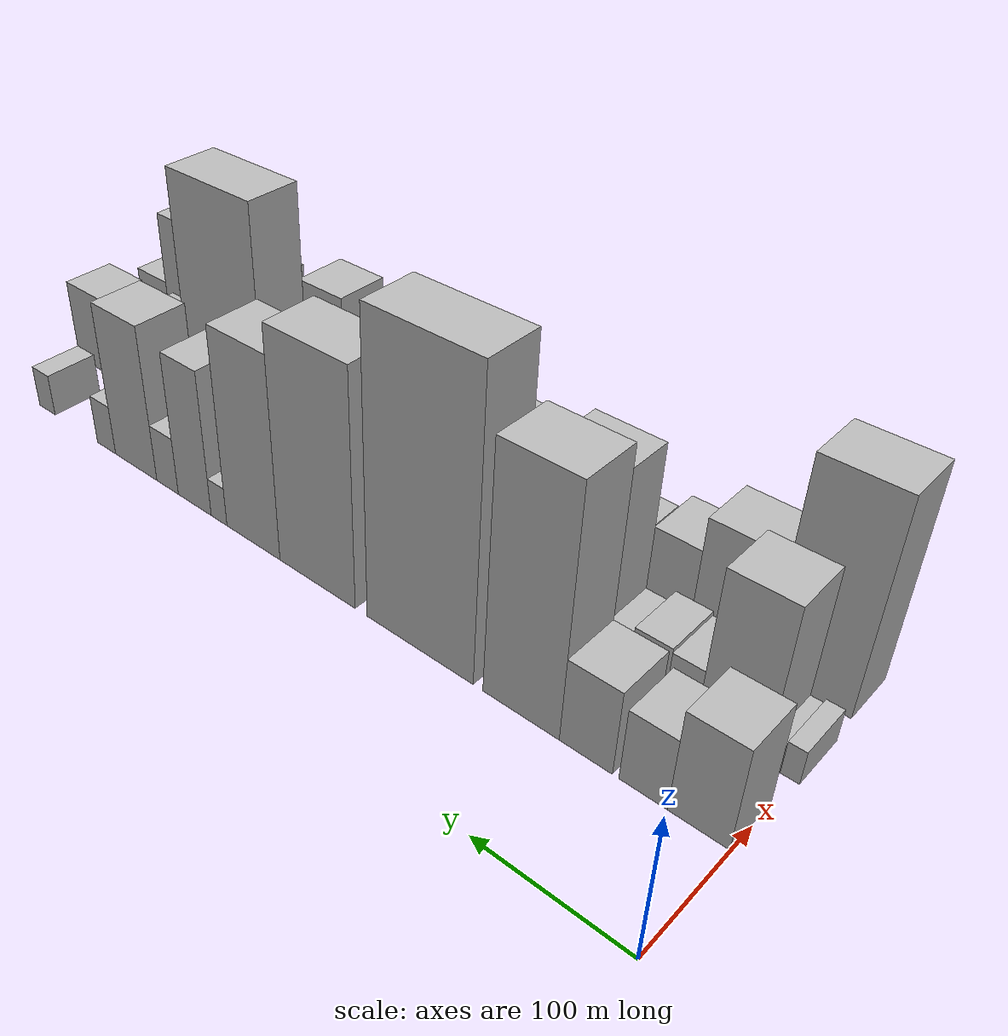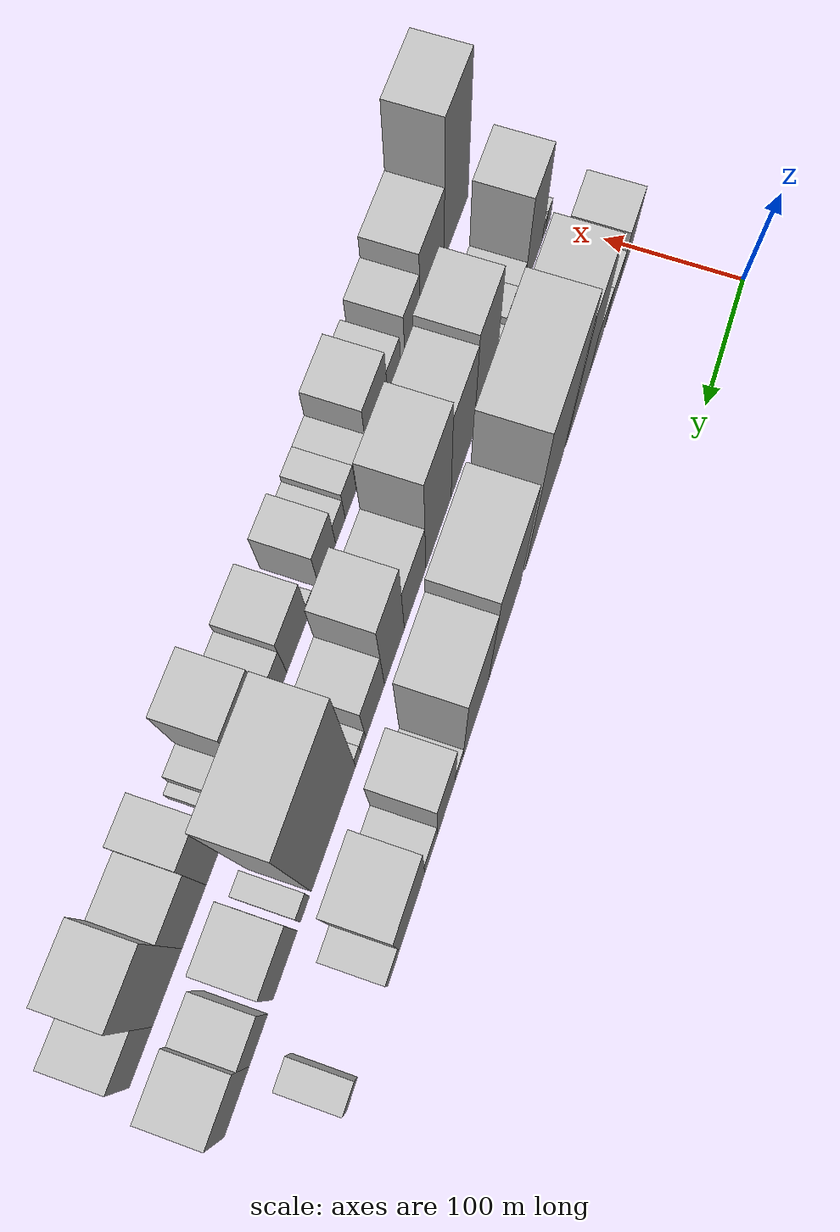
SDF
<sdf version="1.6">
 <world name="default">
  <model name="building_17">
   <static>1</static>
   <pose>100.0000 18.7852 0 0.000000 0.000000 0.000000</pose>
   <link name="link">
    <pose>0 0 36.00 0 0 0</pose>
    <collision name="collision"><geometry><box><size>40.0000 36.2534 72.0000</size></box></geometry></collision>
    <visual name="visual">
     <cast_shadows>0</cast_shadows>
     <geometry><box><size>40.0000 36.2534 72.0000</size></box></geometry>
     <material>
      <script>
       <uri>model://HANNAS_wall/materials/scripts</uri>
       <uri>model://HANNAS_wall/materials/textures</uri>
       <name>vrc/HANNAS_wall</name>
      </script>
     </material>
    </visual>
   </link>
  </model>
  <model name="building_18">
   <static>1</static>
   <pose>100.0000 51.7863 0 0.000000 0.000000 0.000000</pose>
   <link name="link">
    <pose>0 0 25.50 0 0 0</pose>
    <collision name="collision"><geometry><box><size>40.0000 29.7487 51.0000</size></box></geometry></collision>
    <visual name="visual">
     <cast_shadows>0</cast_shadows>
     <geometry><box><size>40.0000 29.7487 51.0000</size></box></geometry>
     <material>
      <script>
       <uri>model://HANNAS_wall/materials/scripts</uri>
       <uri>model://HANNAS_wall/materials/textures</uri>
       <name>vrc/HANNAS_wall</name>
      </script>
     </material>
    </visual>
   </link>
  </model>
  <model name="building_19">
   <static>1</static>
   <pose>100.0000 87.9456 0 0.000000 0.000000 0.000000</pose>
   <link name="link">
    <pose>0 0 30.00 0 0 0</pose>
    <collision name="collision"><geometry><box><size>40.0000 34.5700 60.0000</size></box></geometry></collision>
    <visual name="visual">
     <cast_shadows>0</cast_shadows>
     <geometry><box><size>40.0000 34.5700 60.0000</size></box></geometry>
     <material>
      <script>
       <uri>model://HANNAS_wall/materials/scripts</uri>
       <uri>model://HANNAS_wall/materials/textures</uri>
       <name>vrc/HANNAS_wall</name>
      </script>
     </material>
    </visual>
   </link>
  </model>
  <model name="building_20">
   <static>1</static>
   <pose>100.0000 131.8592 0 0.000000 0.000000 0.000000</pose>
   <link name="link">
    <pose>0 0 87.00 0 0 0</pose>
    <collision name="collision"><geometry><box><size>40.0000 53.2572 174.0000</size></box></geometry></collision>
    <visual name="visual">
     <cast_shadows>0</cast_shadows>
     <geometry><box><size>40.0000 53.2572 174.0000</size></box></geometry>
     <material>
      <script>
       <uri>model://HANNAS_wall/materials/scripts</uri>
       <uri>model://HANNAS_wall/materials/textures</uri>
       <name>vrc/HANNAS_wall</name>
      </script>
     </material>
    </visual>
   </link>
  </model>
  <model name="building_21">
   <static>1</static>
   <pose>100.0000 206.7829 0 0.000000 0.000000 0.000000</pose>
   <link name="link">
    <pose>0 0 106.50 0 0 0</pose>
    <collision name="collision"><geometry><box><size>40.0000 82.5902 213.0000</size></box></geometry></collision>
    <visual name="visual">
     <cast_shadows>0</cast_shadows>
     <geometry><box><size>40.0000 82.5902 213.0000</size></box></geometry>
     <material>
      <script>
       <uri>model://HANNAS_wall/materials/scripts</uri>
       <uri>model://HANNAS_wall/materials/textures</uri>
       <name>vrc/HANNAS_wall</name>
      </script>
     </material>
    </visual>
   </link>
  </model>
  <model name="building_22">
   <static>1</static>
   <pose>100.0000 291.1268 0 0.000000 0.000000 0.000000</pose>
   <link name="link">
    <pose>0 0 85.50 0 0 0</pose>
    <collision name="collision"><geometry><box><size>40.0000 66.0975 171.0000</size></box></geometry></collision>
    <visual name="visual">
     <cast_shadows>0</cast_shadows>
     <geometry><box><size>40.0000 66.0975 171.0000</size></box></geometry>
     <material>
      <script>
       <uri>model://HANNAS_wall/materials/scripts</uri>
       <uri>model://HANNAS_wall/materials/textures</uri>
       <name>vrc/HANNAS_wall</name>
      </script>
     </material>
    </visual>
   </link>
  </model>
  <model name="building_23">
   <static>1</static>
   <pose>100.0000 349.3756 0 0.000000 0.000000 0.000000</pose>
   <link name="link">
    <pose>0 0 75.00 0 0 0</pose>
    <collision name="collision"><geometry><box><size>40.0000 50.4002 150.0000</size></box></geometry></collision>
    <visual name="visual">
     <cast_shadows>0</cast_shadows>
     <geometry><box><size>40.0000 50.4002 150.0000</size></box></geometry>
     <material>
      <script>
       <uri>model://HANNAS_wall/materials/scripts</uri>
       <uri>model://HANNAS_wall/materials/textures</uri>
       <name>vrc/HANNAS_wall</name>
      </script>
     </material>
    </visual>
   </link>
  </model>
  <model name="building_24">
   <static>1</static>
   <pose>100.0000 382.4126 0 0.000000 0.000000 0.000000</pose>
   <link name="link">
    <pose>0 0 15.00 0 0 0</pose>
    <collision name="collision"><geometry><box><size>40.0000 15.6738 30.0000</size></box></geometry></collision>
    <visual name="visual">
     <cast_shadows>0</cast_shadows>
     <geometry><box><size>40.0000 15.6738 30.0000</size></box></geometry>
     <material>
      <script>
       <uri>model://HANNAS_wall/materials/scripts</uri>
       <uri>model://HANNAS_wall/materials/textures</uri>
       <name>vrc/HANNAS_wall</name>
      </script>
     </material>
    </visual>
   </link>
  </model>
  <model name="building_25">
   <static>1</static>
   <pose>100.0000 407.1039 0 0.000000 0.000000 0.000000</pose>
   <link name="link">
    <pose>0 0 55.50 0 0 0</pose>
    <collision name="collision"><geometry><box><size>40.0000 33.7089 111.0000</size></box></geometry></collision>
    <visual name="visual">
     <cast_shadows>0</cast_shadows>
     <geometry><box><size>40.0000 33.7089 111.0000</size></box></geometry>
     <material>
      <script>
       <uri>model://HANNAS_wall/materials/scripts</uri>
       <uri>model://HANNAS_wall/materials/textures</uri>
       <name>vrc/HANNAS_wall</name>
      </script>
     </material>
    </visual>
   </link>
  </model>
  <model name="building_26">
   <static>1</static>
   <pose>100.0000 435.3953 0 0.000000 0.000000 0.000000</pose>
   <link name="link">
    <pose>0 0 22.50 0 0 0</pose>
    <collision name="collision"><geometry><box><size>40.0000 22.8740 45.0000</size></box></geometry></collision>
    <visual name="visual">
     <cast_shadows>0</cast_shadows>
     <geometry><box><size>40.0000 22.8740 45.0000</size></box></geometry>
     <material>
      <script>
       <uri>model://HANNAS_wall/materials/scripts</uri>
       <uri>model://HANNAS_wall/materials/textures</uri>
       <name>vrc/HANNAS_wall</name>
      </script>
     </material>
    </visual>
   </link>
  </model>
  <model name="building_27">
   <static>1</static>
   <pose>100.0000 469.7228 0 0.000000 0.000000 0.000000</pose>
   <link name="link">
    <pose>0 0 60.00 0 0 0</pose>
    <collision name="collision"><geometry><box><size>40.0000 45.7809 120.0000</size></box></geometry></collision>
    <visual name="visual">
     <cast_shadows>0</cast_shadows>
     <geometry><box><size>40.0000 45.7809 120.0000</size></box></geometry>
     <material>
      <script>
       <uri>model://HANNAS_wall/materials/scripts</uri>
       <uri>model://HANNAS_wall/materials/textures</uri>
       <name>vrc/HANNAS_wall</name>
      </script>
     </material>
    </visual>
   </link>
  </model>
  <model name="building_28">
   <static>1</static>
   <pose>100.0000 503.0338 0 0.000000 0.000000 0.000000</pose>
   <link name="link">
    <pose>0 0 19.50 0 0 0</pose>
    <collision name="collision"><geometry><box><size>40.0000 20.8411 39.0000</size></box></geometry></collision>
    <visual name="visual">
     <cast_shadows>0</cast_shadows>
     <geometry><box><size>40.0000 20.8411 39.0000</size></box></geometry>
     <material>
      <script>
       <uri>model://HANNAS_wall/materials/scripts</uri>
       <uri>model://HANNAS_wall/materials/textures</uri>
       <name>vrc/HANNAS_wall</name>
      </script>
     </material>
    </visual>
   </link>
  </model>
  <model name="building_29">
   <static>1</static>
   <pose>100.0000 574.2659 0 0.000000 0.000000 0.000000</pose>
   <link name="link">
    <pose>0 0 16.50 0 0 0</pose>
    <collision name="collision"><geometry><box><size>40.0000 19.2077 33.0000</size></box></geometry></collision>
    <visual name="visual">
     <cast_shadows>0</cast_shadows>
     <geometry><box><size>40.0000 19.2077 33.0000</size></box></geometry>
     <material>
      <script>
       <uri>model://HANNAS_wall/materials/scripts</uri>
       <uri>model://HANNAS_wall/materials/textures</uri>
       <name>vrc/HANNAS_wall</name>
      </script>
     </material>
    </visual>
   </link>
  </model>
  <model name="building_46">
   <static>1</static>
   <pose>160.0000 1.4038 0 0.000000 0.000000 0.000000</pose>
   <link name="link">
    <pose>0 0 12.00 0 0 0</pose>
    <collision name="collision"><geometry><box><size>40.0000 11.2175 24.0000</size></box></geometry></collision>
    <visual name="visual">
     <cast_shadows>0</cast_shadows>
     <geometry><box><size>40.0000 11.2175 24.0000</size></box></geometry>
     <material>
      <script>
       <uri>model://HANNAS_wall/materials/scripts</uri>
       <uri>model://HANNAS_wall/materials/textures</uri>
       <name>vrc/HANNAS_wall</name>
      </script>
     </material>
    </visual>
   </link>
  </model>
  <model name="building_47">
   <static>1</static>
   <pose>160.0000 11.3274 0 0.000000 0.000000 0.000000</pose>
   <link name="link">
    <pose>0 0 10.50 0 0 0</pose>
    <collision name="collision"><geometry><box><size>40.0000 8.6299 21.0000</size></box></geometry></collision>
    <visual name="visual">
     <cast_shadows>0</cast_shadows>
     <geometry><box><size>40.0000 8.6299 21.0000</size></box></geometry>
     <material>
      <script>
       <uri>model://HANNAS_wall/materials/scripts</uri>
       <uri>model://HANNAS_wall/materials/textures</uri>
       <name>vrc/HANNAS_wall</name>
      </script>
     </material>
    </visual>
   </link>
  </model>
  <model name="building_48">
   <static>1</static>
   <pose>160.0000 36.8837 0 0.000000 0.000000 0.000000</pose>
   <link name="link">
    <pose>0 0 55.50 0 0 0</pose>
    <collision name="collision"><geometry><box><size>40.0000 42.4827 111.0000</size></box></geometry></collision>
    <visual name="visual">
     <cast_shadows>0</cast_shadows>
     <geometry><box><size>40.0000 42.4827 111.0000</size></box></geometry>
     <material>
      <script>
       <uri>model://HANNAS_wall/materials/scripts</uri>
       <uri>model://HANNAS_wall/materials/textures</uri>
       <name>vrc/HANNAS_wall</name>
      </script>
     </material>
    </visual>
   </link>
  </model>
  <model name="building_49">
   <static>1</static>
   <pose>160.0000 68.3604 0 0.000000 0.000000 0.000000</pose>
   <link name="link">
    <pose>0 0 19.50 0 0 0</pose>
    <collision name="collision"><geometry><box><size>40.0000 20.4708 39.0000</size></box></geometry></collision>
    <visual name="visual">
     <cast_shadows>0</cast_shadows>
     <geometry><box><size>40.0000 20.4708 39.0000</size></box></geometry>
     <material>
      <script>
       <uri>model://HANNAS_wall/materials/scripts</uri>
       <uri>model://HANNAS_wall/materials/textures</uri>
       <name>vrc/HANNAS_wall</name>
      </script>
     </material>
    </visual>
   </link>
  </model>
  <model name="building_50">
   <static>1</static>
   <pose>160.0000 90.8605 0 0.000000 0.000000 0.000000</pose>
   <link name="link">
    <pose>0 0 21.00 0 0 0</pose>
    <collision name="collision"><geometry><box><size>40.0000 24.5293 42.0000</size></box></geometry></collision>
    <visual name="visual">
     <cast_shadows>0</cast_shadows>
     <geometry><box><size>40.0000 24.5293 42.0000</size></box></geometry>
     <material>
      <script>
       <uri>model://HANNAS_wall/materials/scripts</uri>
       <uri>model://HANNAS_wall/materials/textures</uri>
       <name>vrc/HANNAS_wall</name>
      </script>
     </material>
    </visual>
   </link>
  </model>
  <model name="building_51">
   <static>1</static>
   <pose>160.0000 112.4825 0 0.000000 0.000000 0.000000</pose>
   <link name="link">
    <pose>0 0 16.50 0 0 0</pose>
    <collision name="collision"><geometry><box><size>40.0000 18.7148 33.0000</size></box></geometry></collision>
    <visual name="visual">
     <cast_shadows>0</cast_shadows>
     <geometry><box><size>40.0000 18.7148 33.0000</size></box></geometry>
     <material>
      <script>
       <uri>model://HANNAS_wall/materials/scripts</uri>
       <uri>model://HANNAS_wall/materials/textures</uri>
       <name>vrc/HANNAS_wall</name>
      </script>
     </material>
    </visual>
   </link>
  </model>
  <model name="building_52">
   <static>1</static>
   <pose>160.0000 145.2218 0 0.000000 0.000000 0.000000</pose>
   <link name="link">
    <pose>0 0 67.50 0 0 0</pose>
    <collision name="collision"><geometry><box><size>40.0000 46.7638 135.0000</size></box></geometry></collision>
    <visual name="visual">
     <cast_shadows>0</cast_shadows>
     <geometry><box><size>40.0000 46.7638 135.0000</size></box></geometry>
     <material>
      <script>
       <uri>model://HANNAS_wall/materials/scripts</uri>
       <uri>model://HANNAS_wall/materials/textures</uri>
       <name>vrc/HANNAS_wall</name>
      </script>
     </material>
    </visual>
   </link>
  </model>
  <model name="building_53">
   <static>1</static>
   <pose>160.0000 192.4869 0 0.000000 0.000000 0.000000</pose>
   <link name="link">
    <pose>0 0 61.50 0 0 0</pose>
    <collision name="collision"><geometry><box><size>40.0000 47.7664 123.0000</size></box></geometry></collision>
    <visual name="visual">
     <cast_shadows>0</cast_shadows>
     <geometry><box><size>40.0000 47.7664 123.0000</size></box></geometry>
     <material>
      <script>
       <uri>model://HANNAS_wall/materials/scripts</uri>
       <uri>model://HANNAS_wall/materials/textures</uri>
       <name>vrc/HANNAS_wall</name>
      </script>
     </material>
    </visual>
   </link>
  </model>
  <model name="building_54">
   <static>1</static>
   <pose>160.0000 241.8060 0 0.000000 0.000000 0.000000</pose>
   <link name="link">
    <pose>0 0 72.00 0 0 0</pose>
    <collision name="collision"><geometry><box><size>40.0000 50.8719 144.0000</size></box></geometry></collision>
    <visual name="visual">
     <cast_shadows>0</cast_shadows>
     <geometry><box><size>40.0000 50.8719 144.0000</size></box></geometry>
     <material>
      <script>
       <uri>model://HANNAS_wall/materials/scripts</uri>
       <uri>model://HANNAS_wall/materials/textures</uri>
       <name>vrc/HANNAS_wall</name>
      </script>
     </material>
    </visual>
   </link>
  </model>
  <model name="building_55">
   <static>1</static>
   <pose>160.0000 288.2679 0 0.000000 0.000000 0.000000</pose>
   <link name="link">
    <pose>0 0 37.50 0 0 0</pose>
    <collision name="collision"><geometry><box><size>40.0000 42.0519 75.0000</size></box></geometry></collision>
    <visual name="visual">
     <cast_shadows>0</cast_shadows>
     <geometry><box><size>40.0000 42.0519 75.0000</size></box></geometry>
     <material>
      <script>
       <uri>model://HANNAS_wall/materials/scripts</uri>
       <uri>model://HANNAS_wall/materials/textures</uri>
       <name>vrc/HANNAS_wall</name>
      </script>
     </material>
    </visual>
   </link>
  </model>
  <model name="building_56">
   <static>1</static>
   <pose>160.0000 328.0796 0 0.000000 0.000000 0.000000</pose>
   <link name="link">
    <pose>0 0 61.50 0 0 0</pose>
    <collision name="collision"><geometry><box><size>40.0000 37.5714 123.0000</size></box></geometry></collision>
    <visual name="visual">
     <cast_shadows>0</cast_shadows>
     <geometry><box><size>40.0000 37.5714 123.0000</size></box></geometry>
     <material>
      <script>
       <uri>model://HANNAS_wall/materials/scripts</uri>
       <uri>model://HANNAS_wall/materials/textures</uri>
       <name>vrc/HANNAS_wall</name>
      </script>
     </material>
    </visual>
   </link>
  </model>
  <model name="building_57">
   <static>1</static>
   <pose>160.0000 364.1901 0 0.000000 0.000000 0.000000</pose>
   <link name="link">
    <pose>0 0 34.50 0 0 0</pose>
    <collision name="collision"><geometry><box><size>40.0000 34.6496 69.0000</size></box></geometry></collision>
    <visual name="visual">
     <cast_shadows>0</cast_shadows>
     <geometry><box><size>40.0000 34.6496 69.0000</size></box></geometry>
     <material>
      <script>
       <uri>model://HANNAS_wall/materials/scripts</uri>
       <uri>model://HANNAS_wall/materials/textures</uri>
       <name>vrc/HANNAS_wall</name>
      </script>
     </material>
    </visual>
   </link>
  </model>
  <model name="building_58">
   <static>1</static>
   <pose>160.0000 386.2372 0 0.000000 0.000000 0.000000</pose>
   <link name="link">
    <pose>0 0 10.50 0 0 0</pose>
    <collision name="collision"><geometry><box><size>40.0000 9.4445 21.0000</size></box></geometry></collision>
    <visual name="visual">
     <cast_shadows>0</cast_shadows>
     <geometry><box><size>40.0000 9.4445 21.0000</size></box></geometry>
     <material>
      <script>
       <uri>model://HANNAS_wall/materials/scripts</uri>
       <uri>model://HANNAS_wall/materials/textures</uri>
       <name>vrc/HANNAS_wall</name>
      </script>
     </material>
    </visual>
   </link>
  </model>
  <model name="building_59">
   <static>1</static>
   <pose>160.0000 395.4625 0 0.000000 0.000000 0.000000</pose>
   <link name="link">
    <pose>0 0 10.50 0 0 0</pose>
    <collision name="collision"><geometry><box><size>40.0000 9.0060 21.0000</size></box></geometry></collision>
    <visual name="visual">
     <cast_shadows>0</cast_shadows>
     <geometry><box><size>40.0000 9.0060 21.0000</size></box></geometry>
     <material>
      <script>
       <uri>model://HANNAS_wall/materials/scripts</uri>
       <uri>model://HANNAS_wall/materials/textures</uri>
       <name>vrc/HANNAS_wall</name>
      </script>
     </material>
    </visual>
   </link>
  </model>
  <model name="building_60">
   <static>1</static>
   <pose>160.0000 438.8293 0 0.000000 0.000000 0.000000</pose>
   <link name="link">
    <pose>0 0 99.00 0 0 0</pose>
    <collision name="collision"><geometry><box><size>40.0000 77.7276 198.0000</size></box></geometry></collision>
    <visual name="visual">
     <cast_shadows>0</cast_shadows>
     <geometry><box><size>40.0000 77.7276 198.0000</size></box></geometry>
     <material>
      <script>
       <uri>model://HANNAS_wall/materials/scripts</uri>
       <uri>model://HANNAS_wall/materials/textures</uri>
       <name>vrc/HANNAS_wall</name>
      </script>
     </material>
    </visual>
   </link>
  </model>
  <model name="building_61">
   <static>1</static>
   <pose>160.0000 488.3699 0 0.000000 0.000000 0.000000</pose>
   <link name="link">
    <pose>0 0 15.00 0 0 0</pose>
    <collision name="collision"><geometry><box><size>40.0000 15.3537 30.0000</size></box></geometry></collision>
    <visual name="visual">
     <cast_shadows>0</cast_shadows>
     <geometry><box><size>40.0000 15.3537 30.0000</size></box></geometry>
     <material>
      <script>
       <uri>model://HANNAS_wall/materials/scripts</uri>
       <uri>model://HANNAS_wall/materials/textures</uri>
       <name>vrc/HANNAS_wall</name>
      </script>
     </material>
    </visual>
   </link>
  </model>
  <model name="building_62">
   <static>1</static>
   <pose>160.0000 521.1765 0 0.000000 0.000000 0.000000</pose>
   <link name="link">
    <pose>0 0 34.50 0 0 0</pose>
    <collision name="collision"><geometry><box><size>40.0000 40.2593 69.0000</size></box></geometry></collision>
    <visual name="visual">
     <cast_shadows>0</cast_shadows>
     <geometry><box><size>40.0000 40.2593 69.0000</size></box></geometry>
     <material>
      <script>
       <uri>model://HANNAS_wall/materials/scripts</uri>
       <uri>model://HANNAS_wall/materials/textures</uri>
       <name>vrc/HANNAS_wall</name>
      </script>
     </material>
    </visual>
   </link>
  </model>
  <model name="building_63">
   <static>1</static>
   <pose>160.0000 564.0856 0 0.000000 0.000000 0.000000</pose>
   <link name="link">
    <pose>0 0 25.50 0 0 0</pose>
    <collision name="collision"><geometry><box><size>40.0000 29.5589 51.0000</size></box></geometry></collision>
    <visual name="visual">
     <cast_shadows>0</cast_shadows>
     <geometry><box><size>40.0000 29.5589 51.0000</size></box></geometry>
     <material>
      <script>
       <uri>model://HANNAS_wall/materials/scripts</uri>
       <uri>model://HANNAS_wall/materials/textures</uri>
       <name>vrc/HANNAS_wall</name>
      </script>
     </material>
    </visual>
   </link>
  </model>
  <model name="building_64">
   <static>1</static>
   <pose>160.0000 598.3153 0 0.000000 0.000000 0.000000</pose>
   <link name="link">
    <pose>0 0 33.00 0 0 0</pose>
    <collision name="collision"><geometry><box><size>40.0000 38.9007 66.0000</size></box></geometry></collision>
    <visual name="visual">
     <cast_shadows>0</cast_shadows>
     <geometry><box><size>40.0000 38.9007 66.0000</size></box></geometry>
     <material>
      <script>
       <uri>model://HANNAS_wall/materials/scripts</uri>
       <uri>model://HANNAS_wall/materials/textures</uri>
       <name>vrc/HANNAS_wall</name>
      </script>
     </material>
    </visual>
   </link>
  </model>
  <model name="building_83">
   <static>1</static>
   <pose>220.0000 24.1666 0 0.000000 0.000000 0.000000</pose>
   <link name="link">
    <pose>0 0 76.50 0 0 0</pose>
    <collision name="collision"><geometry><box><size>40.0000 53.1630 153.0000</size></box></geometry></collision>
    <visual name="visual">
     <cast_shadows>0</cast_shadows>
     <geometry><box><size>40.0000 53.1630 153.0000</size></box></geometry>
     <material>
      <script>
       <uri>model://HANNAS_wall/materials/scripts</uri>
       <uri>model://HANNAS_wall/materials/textures</uri>
       <name>vrc/HANNAS_wall</name>
      </script>
     </material>
    </visual>
   </link>
  </model>
  <model name="building_84">
   <static>1</static>
   <pose>220.0000 75.9424 0 0.000000 0.000000 0.000000</pose>
   <link name="link">
    <pose>0 0 42.00 0 0 0</pose>
    <collision name="collision"><geometry><box><size>40.0000 50.3887 84.0000</size></box></geometry></collision>
    <visual name="visual">
     <cast_shadows>0</cast_shadows>
     <geometry><box><size>40.0000 50.3887 84.0000</size></box></geometry>
     <material>
      <script>
       <uri>model://HANNAS_wall/materials/scripts</uri>
       <uri>model://HANNAS_wall/materials/textures</uri>
       <name>vrc/HANNAS_wall</name>
      </script>
     </material>
    </visual>
   </link>
  </model>
  <model name="building_85">
   <static>1</static>
   <pose>220.0000 117.1298 0 0.000000 0.000000 0.000000</pose>
   <link name="link">
    <pose>0 0 30.00 0 0 0</pose>
    <collision name="collision"><geometry><box><size>40.0000 31.9861 60.0000</size></box></geometry></collision>
    <visual name="visual">
     <cast_shadows>0</cast_shadows>
     <geometry><box><size>40.0000 31.9861 60.0000</size></box></geometry>
     <material>
      <script>
       <uri>model://HANNAS_wall/materials/scripts</uri>
       <uri>model://HANNAS_wall/materials/textures</uri>
       <name>vrc/HANNAS_wall</name>
      </script>
     </material>
    </visual>
   </link>
  </model>
  <model name="building_86">
   <static>1</static>
   <pose>220.0000 154.0769 0 0.000000 0.000000 0.000000</pose>
   <link name="link">
    <pose>0 0 24.00 0 0 0</pose>
    <collision name="collision"><geometry><box><size>40.0000 25.9079 48.0000</size></box></geometry></collision>
    <visual name="visual">
     <cast_shadows>0</cast_shadows>
     <geometry><box><size>40.0000 25.9079 48.0000</size></box></geometry>
     <material>
      <script>
       <uri>model://HANNAS_wall/materials/scripts</uri>
       <uri>model://HANNAS_wall/materials/textures</uri>
       <name>vrc/HANNAS_wall</name>
      </script>
     </material>
    </visual>
   </link>
  </model>
  <model name="building_87">
   <static>1</static>
   <pose>220.0000 187.7742 0 0.000000 0.000000 0.000000</pose>
   <link name="link">
    <pose>0 0 37.50 0 0 0</pose>
    <collision name="collision"><geometry><box><size>40.0000 41.4867 75.0000</size></box></geometry></collision>
    <visual name="visual">
     <cast_shadows>0</cast_shadows>
     <geometry><box><size>40.0000 41.4867 75.0000</size></box></geometry>
     <material>
      <script>
       <uri>model://HANNAS_wall/materials/scripts</uri>
       <uri>model://HANNAS_wall/materials/textures</uri>
       <name>vrc/HANNAS_wall</name>
      </script>
     </material>
    </visual>
   </link>
  </model>
  <model name="building_88">
   <static>1</static>
   <pose>220.0000 219.6328 0 0.000000 0.000000 0.000000</pose>
   <link name="link">
    <pose>0 0 21.00 0 0 0</pose>
    <collision name="collision"><geometry><box><size>40.0000 22.2304 42.0000</size></box></geometry></collision>
    <visual name="visual">
     <cast_shadows>0</cast_shadows>
     <geometry><box><size>40.0000 22.2304 42.0000</size></box></geometry>
     <material>
      <script>
       <uri>model://HANNAS_wall/materials/scripts</uri>
       <uri>model://HANNAS_wall/materials/textures</uri>
       <name>vrc/HANNAS_wall</name>
      </script>
     </material>
    </visual>
   </link>
  </model>
  <model name="building_89">
   <static>1</static>
   <pose>220.0000 241.2531 0 0.000000 0.000000 0.000000</pose>
   <link name="link">
    <pose>0 0 21.00 0 0 0</pose>
    <collision name="collision"><geometry><box><size>40.0000 21.0103 42.0000</size></box></geometry></collision>
    <visual name="visual">
     <cast_shadows>0</cast_shadows>
     <geometry><box><size>40.0000 21.0103 42.0000</size></box></geometry>
     <material>
      <script>
       <uri>model://HANNAS_wall/materials/scripts</uri>
       <uri>model://HANNAS_wall/materials/textures</uri>
       <name>vrc/HANNAS_wall</name>
      </script>
     </material>
    </visual>
   </link>
  </model>
  <model name="building_90">
   <static>1</static>
   <pose>220.0000 260.8070 0 0.000000 0.000000 0.000000</pose>
   <link name="link">
    <pose>0 0 16.50 0 0 0</pose>
    <collision name="collision"><geometry><box><size>40.0000 18.0975 33.0000</size></box></geometry></collision>
    <visual name="visual">
     <cast_shadows>0</cast_shadows>
     <geometry><box><size>40.0000 18.0975 33.0000</size></box></geometry>
     <material>
      <script>
       <uri>model://HANNAS_wall/materials/scripts</uri>
       <uri>model://HANNAS_wall/materials/textures</uri>
       <name>vrc/HANNAS_wall</name>
      </script>
     </material>
    </visual>
   </link>
  </model>
  <model name="building_91">
   <static>1</static>
   <pose>220.0000 285.1824 0 0.000000 0.000000 0.000000</pose>
   <link name="link">
    <pose>0 0 28.50 0 0 0</pose>
    <collision name="collision"><geometry><box><size>40.0000 30.6532 57.0000</size></box></geometry></collision>
    <visual name="visual">
     <cast_shadows>0</cast_shadows>
     <geometry><box><size>40.0000 30.6532 57.0000</size></box></geometry>
     <material>
      <script>
       <uri>model://HANNAS_wall/materials/scripts</uri>
       <uri>model://HANNAS_wall/materials/textures</uri>
       <name>vrc/HANNAS_wall</name>
      </script>
     </material>
    </visual>
   </link>
  </model>
  <model name="building_92">
   <static>1</static>
   <pose>220.0000 314.6774 0 0.000000 0.000000 0.000000</pose>
   <link name="link">
    <pose>0 0 10.50 0 0 0</pose>
    <collision name="collision"><geometry><box><size>40.0000 10.3367 21.0000</size></box></geometry></collision>
    <visual name="visual">
     <cast_shadows>0</cast_shadows>
     <geometry><box><size>40.0000 10.3367 21.0000</size></box></geometry>
     <material>
      <script>
       <uri>model://HANNAS_wall/materials/scripts</uri>
       <uri>model://HANNAS_wall/materials/textures</uri>
       <name>vrc/HANNAS_wall</name>
      </script>
     </material>
    </visual>
   </link>
  </model>
  <model name="building_93">
   <static>1</static>
   <pose>220.0000 339.1789 0 0.000000 0.000000 0.000000</pose>
   <link name="link">
    <pose>0 0 33.00 0 0 0</pose>
    <collision name="collision"><geometry><box><size>40.0000 38.6663 66.0000</size></box></geometry></collision>
    <visual name="visual">
     <cast_shadows>0</cast_shadows>
     <geometry><box><size>40.0000 38.6663 66.0000</size></box></geometry>
     <material>
      <script>
       <uri>model://HANNAS_wall/materials/scripts</uri>
       <uri>model://HANNAS_wall/materials/textures</uri>
       <name>vrc/HANNAS_wall</name>
      </script>
     </material>
    </visual>
   </link>
  </model>
  <model name="building_94">
   <static>1</static>
   <pose>220.0000 371.8234 0 0.000000 0.000000 0.000000</pose>
   <link name="link">
    <pose>0 0 25.50 0 0 0</pose>
    <collision name="collision"><geometry><box><size>40.0000 26.6228 51.0000</size></box></geometry></collision>
    <visual name="visual">
     <cast_shadows>0</cast_shadows>
     <geometry><box><size>40.0000 26.6228 51.0000</size></box></geometry>
     <material>
      <script>
       <uri>model://HANNAS_wall/materials/scripts</uri>
       <uri>model://HANNAS_wall/materials/textures</uri>
       <name>vrc/HANNAS_wall</name>
      </script>
     </material>
    </visual>
   </link>
  </model>
  <model name="building_95">
   <static>1</static>
   <pose>220.0000 405.3151 0 0.000000 0.000000 0.000000</pose>
   <link name="link">
    <pose>0 0 57.00 0 0 0</pose>
    <collision name="collision"><geometry><box><size>40.0000 40.3606 114.0000</size></box></geometry></collision>
    <visual name="visual">
     <cast_shadows>0</cast_shadows>
     <geometry><box><size>40.0000 40.3606 114.0000</size></box></geometry>
     <material>
      <script>
       <uri>model://HANNAS_wall/materials/scripts</uri>
       <uri>model://HANNAS_wall/materials/textures</uri>
       <name>vrc/HANNAS_wall</name>
      </script>
     </material>
    </visual>
   </link>
  </model>
  <model name="building_96">
   <static>1</static>
   <pose>220.0000 435.6847 0 0.000000 0.000000 0.000000</pose>
   <link name="link">
    <pose>0 0 18.00 0 0 0</pose>
    <collision name="collision"><geometry><box><size>40.0000 20.3787 36.0000</size></box></geometry></collision>
    <visual name="visual">
     <cast_shadows>0</cast_shadows>
     <geometry><box><size>40.0000 20.3787 36.0000</size></box></geometry>
     <material>
      <script>
       <uri>model://HANNAS_wall/materials/scripts</uri>
       <uri>model://HANNAS_wall/materials/textures</uri>
       <name>vrc/HANNAS_wall</name>
      </script>
     </material>
    </visual>
   </link>
  </model>
  <model name="building_97">
   <static>1</static>
   <pose>220.0000 449.9315 0 0.000000 0.000000 0.000000</pose>
   <link name="link">
    <pose>0 0 9.00 0 0 0</pose>
    <collision name="collision"><geometry><box><size>40.0000 8.1149 18.0000</size></box></geometry></collision>
    <visual name="visual">
     <cast_shadows>0</cast_shadows>
     <geometry><box><size>40.0000 8.1149 18.0000</size></box></geometry>
     <material>
      <script>
       <uri>model://HANNAS_wall/materials/scripts</uri>
       <uri>model://HANNAS_wall/materials/textures</uri>
       <name>vrc/HANNAS_wall</name>
      </script>
     </material>
    </visual>
   </link>
  </model>
  <model name="building_98">
   <static>1</static>
   <pose>220.0000 478.9331 0 0.000000 0.000000 0.000000</pose>
   <link name="link">
    <pose>0 0 48.00 0 0 0</pose>
    <collision name="collision"><geometry><box><size>40.0000 29.8884 96.0000</size></box></geometry></collision>
    <visual name="visual">
     <cast_shadows>0</cast_shadows>
     <geometry><box><size>40.0000 29.8884 96.0000</size></box></geometry>
     <material>
      <script>
       <uri>model://HANNAS_wall/materials/scripts</uri>
       <uri>model://HANNAS_wall/materials/textures</uri>
       <name>vrc/HANNAS_wall</name>
      </script>
     </material>
    </visual>
   </link>
  </model>
  <model name="building_99">
   <static>1</static>
   <pose>220.0000 512.7939 0 0.000000 0.000000 0.000000</pose>
   <link name="link">
    <pose>0 0 37.50 0 0 0</pose>
    <collision name="collision"><geometry><box><size>40.0000 37.8331 75.0000</size></box></geometry></collision>
    <visual name="visual">
     <cast_shadows>0</cast_shadows>
     <geometry><box><size>40.0000 37.8331 75.0000</size></box></geometry>
     <material>
      <script>
       <uri>model://HANNAS_wall/materials/scripts</uri>
       <uri>model://HANNAS_wall/materials/textures</uri>
       <name>vrc/HANNAS_wall</name>
      </script>
     </material>
    </visual>
   </link>
  </model>
  <model name="building_100">
   <static>1</static>
   <pose>220.0000 554.2877 0 0.000000 0.000000 0.000000</pose>
   <link name="link">
    <pose>0 0 57.00 0 0 0</pose>
    <collision name="collision"><geometry><box><size>40.0000 45.1546 114.0000</size></box></geometry></collision>
    <visual name="visual">
     <cast_shadows>0</cast_shadows>
     <geometry><box><size>40.0000 45.1546 114.0000</size></box></geometry>
     <material>
      <script>
       <uri>model://HANNAS_wall/materials/scripts</uri>
       <uri>model://HANNAS_wall/materials/textures</uri>
       <name>vrc/HANNAS_wall</name>
      </script>
     </material>
    </visual>
   </link>
  </model>
  <model name="building_101">
   <static>1</static>
   <pose>220.0000 593.8457 0 0.000000 0.000000 0.000000</pose>
   <link name="link">
    <pose>0 0 28.50 0 0 0</pose>
    <collision name="collision"><geometry><box><size>40.0000 33.9614 57.0000</size></box></geometry></collision>
    <visual name="visual">
     <cast_shadows>0</cast_shadows>
     <geometry><box><size>40.0000 33.9614 57.0000</size></box></geometry>
     <material>
      <script>
       <uri>model://HANNAS_wall/materials/scripts</uri>
       <uri>model://HANNAS_wall/materials/textures</uri>
       <name>vrc/HANNAS_wall</name>
      </script>
     </material>
    </visual>
   </link>
  </model>
 </world>
</sdf>
